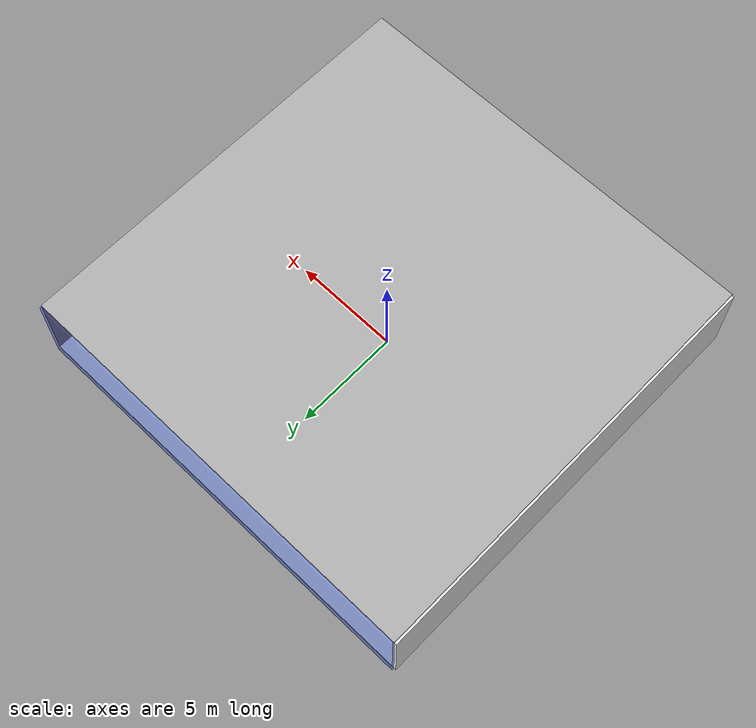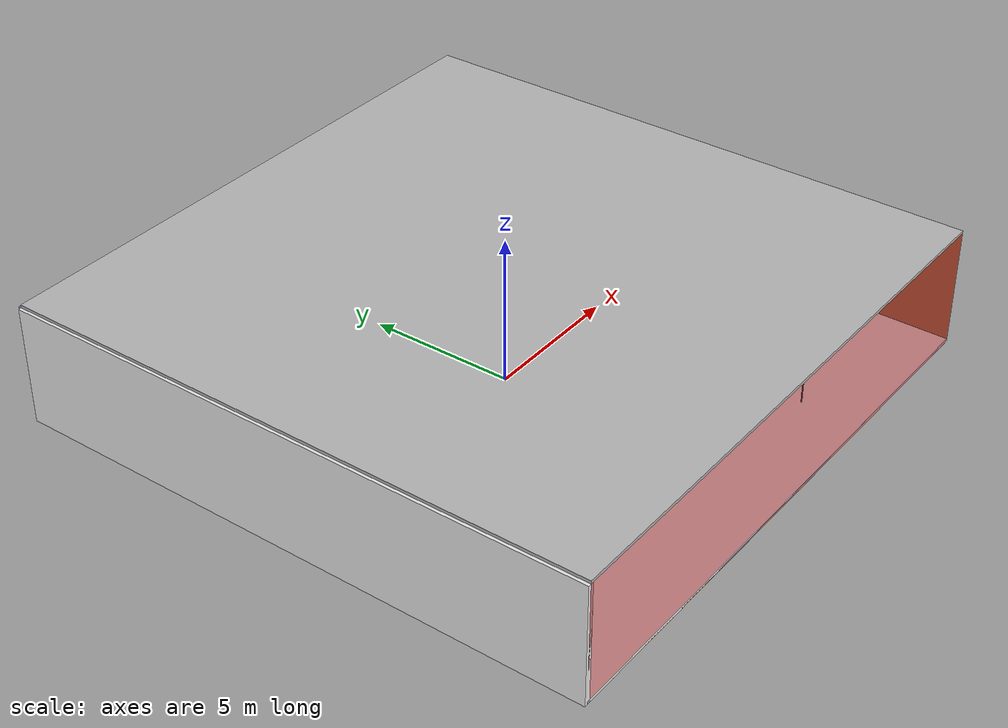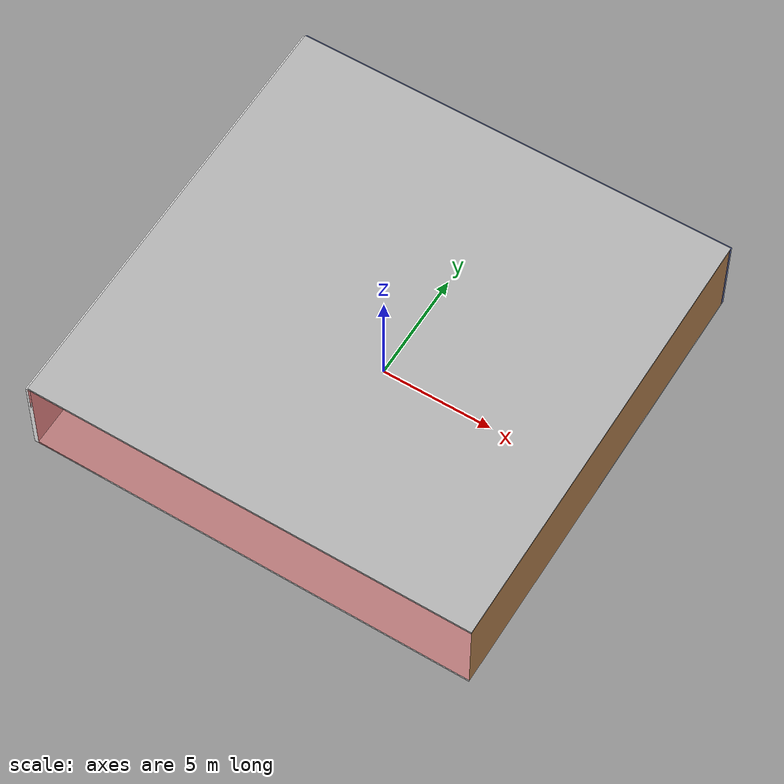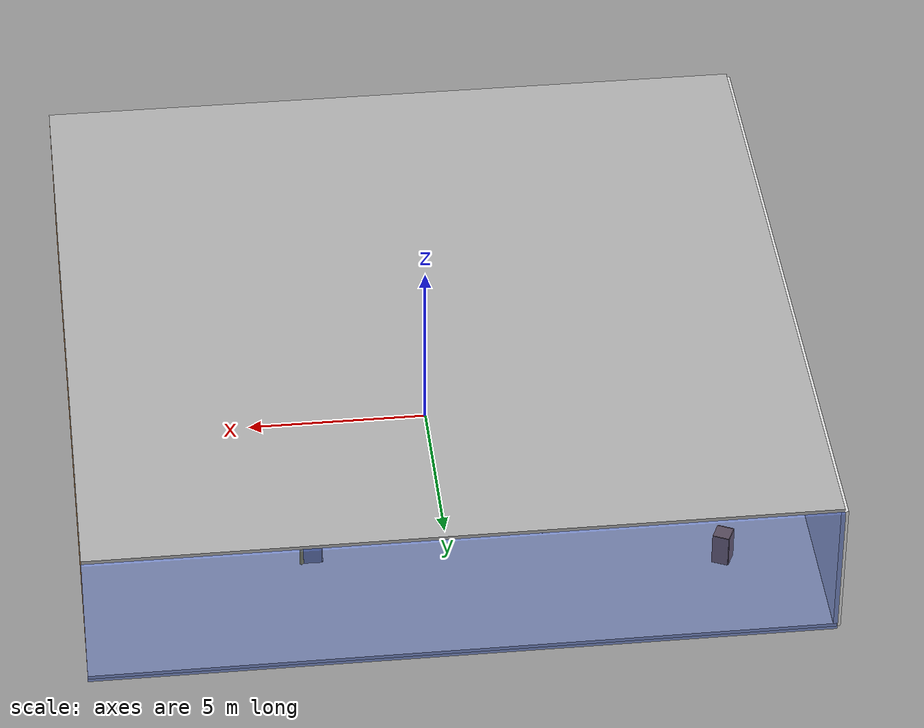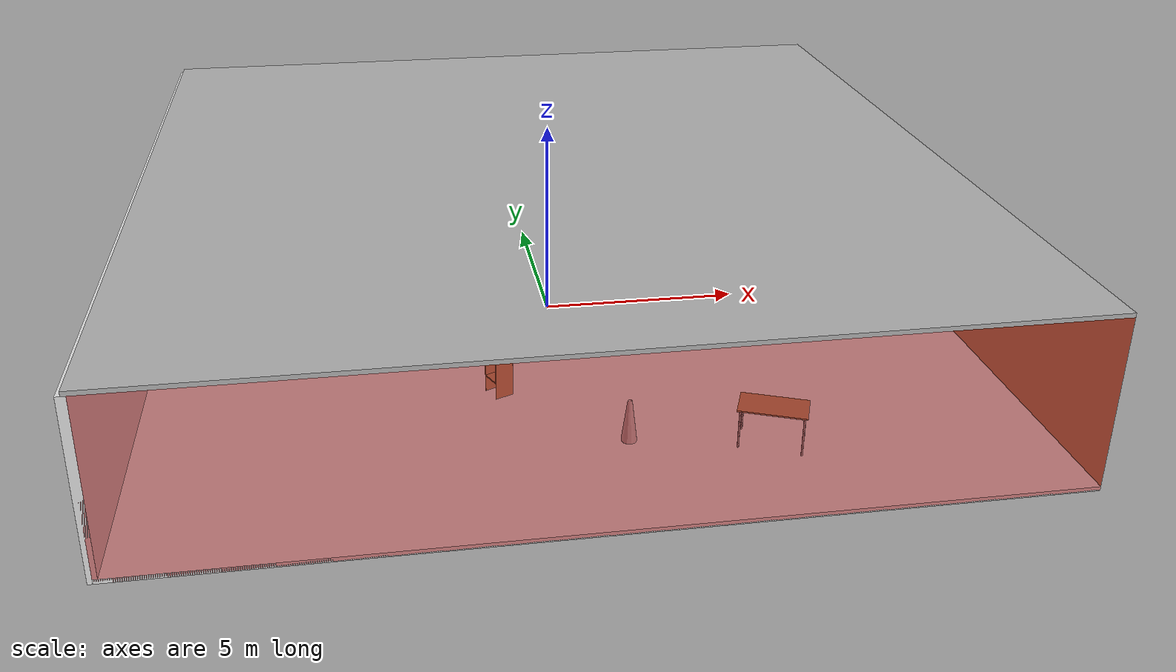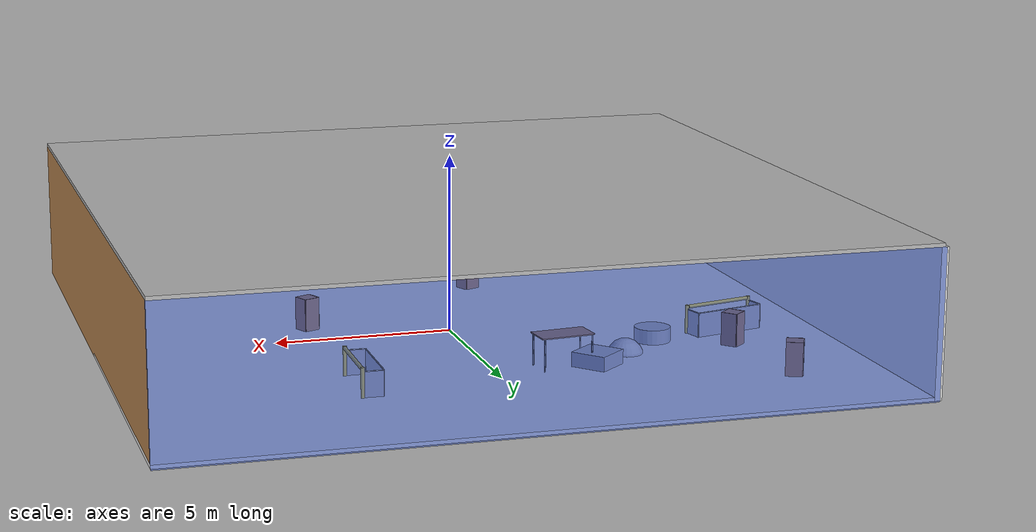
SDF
<sdf version="1.4">
 <world name="default">
  <physics type="ode">
   <max_step_size>0.001</max_step_size>
   <real_time_factor>1</real_time_factor>
   <real_time_update_rate>1000</real_time_update_rate>
   <gravity>0 0 -9.8</gravity>
  </physics>
  <scene><ambient>0.4 0.4 0.4 1</ambient><background>0.7 0.7 0.7 1</background><shadows>1</shadows></scene>
  <model name="Surrounding">
   <static>1</static>
   <link name="Ceiling">
    <collision name="Ceiling_Collision"><geometry><box><size>20 20 0.1</size></box></geometry></collision>
    <visual name="Ceiling_Visual">
     <geometry><box><size>20 20 0.1</size></box></geometry>
     <material>
      <script><uri>file://media/materials/scripts/gazebo.material</uri><name>Gazebo/Pioneer2Body</name></script>
     </material>
    </visual>
    <pose>0 0 4.05 0 0 0</pose>
   </link>
   <link name="Wall_South">
    <collision name="Wall_South_Collision">
     <geometry><box><size>20 0 4</size></box></geometry>
     <pose>0 0 2 0 -0 0</pose>
    </collision>
    <visual name="Wall_South_Visual">
     <pose>0 0 2 0 -0 0</pose>
     <geometry><box><size>20 0 4</size></box></geometry>
     <material>
      <script><uri>file://media/materials/scripts/gazebo.material</uri><name>Gazebo/RedTransparent</name></script>
     </material>
    </visual>
    <velocity_decay><linear>0</linear><angular>0</angular></velocity_decay>
    <pose>0 -10 0 0 -0 0</pose>
   </link>
   <link name="Wall_East">
    <collision name="Wall_21_Collision">
     <geometry><box><size>20 0 4</size></box></geometry>
     <pose>0 0 2 0 -0 0</pose>
    </collision>
    <visual name="Wall_21_Visual">
     <pose>0 0 2 0 -0 0</pose>
     <geometry><box><size>20 0 4</size></box></geometry>
     <material>
      <script><uri>file://media/materials/scripts/gazebo.material</uri><name>Gazebo/WoodPallet</name></script>
     </material>
    </visual>
    <velocity_decay><linear>0</linear><angular>0</angular></velocity_decay>
    <pose>10 0 0 0 -0 1.5708</pose>
   </link>
   <link name="Wall_North">
    <collision name="Wall_22_Collision">
     <geometry><box><size>20 0.2 4</size></box></geometry>
     <pose>0 0 2 0 -0 0</pose>
    </collision>
    <visual name="Wall_22_Visual">
     <pose>0 0 2 0 -0 0</pose>
     <geometry><box><size>20 0.2 4</size></box></geometry>
     <material>
      <script><uri>file://media/materials/scripts/gazebo.material</uri><name>Gazebo/BlueTransparent</name></script>
     </material>
    </visual>
    <velocity_decay><linear>0</linear><angular>0</angular></velocity_decay>
    <pose>0 10 0 0 -0 0</pose>
   </link>
   <link name="Wall_West">
    <collision name="Wall_23_Collision">
     <geometry><box><size>20 0.2 4</size></box></geometry>
     <pose>0 0 2 0 -0 0</pose>
    </collision>
    <visual name="Wall_23_Visual">
     <pose>0 0 2 0 -0 0</pose>
     <geometry><box><size>20 0.2 4</size></box></geometry>
     <material>
      <script><uri>file://media/materials/scripts/gazebo.material</uri><name>Gazebo/White</name></script>
     </material>
    </visual>
    <velocity_decay><linear>0</linear><angular>0</angular></velocity_decay>
    <pose>-10 0 0 0 0 -1.5708</pose>
   </link>
   <link name="Ground_link">
    <collision name="collision">
     <pose>0 0 .05 0 -0 0</pose>
     <geometry><box><size>20 20 0.1</size></box></geometry>
    </collision>
    <visual name="visual">
     <pose>0 0 .05 0 -0 0</pose>
     <geometry><box><size>20 20 0.1</size></box></geometry>
     <material>
      <script><uri>file://media/materials/scripts/gazebo.material</uri><name>Gazebo/White</name></script>
     </material>
    </visual>
   </link>
   <static>1</static>
  </model>
  <spherical_coordinates>
   <surface_model>EARTH_WGS84</surface_model>
   <latitude_deg>0</latitude_deg>
   <longitude_deg>0</longitude_deg>
   <elevation>0</elevation>
   <heading_deg>0</heading_deg>
  </spherical_coordinates>
  <light name="lightball_0" type="diffuse">
   <diffuse>0.8 0.8 0.8 1</diffuse>
   <specular>0.2 0.2 0.2 1</specular>
   <attenuation>
    <range>100</range>
    <constant>0.7</constant>
    <linear>0.01</linear>
    <quadratic>0.001</quadratic>
   </attenuation>
   <direction>-0.5 0.1 -0.9</direction>
   <pose>-8.60691867479 7.83283280901 0.898996388123 0 0 0</pose>
  </light>
  <light name="lightball_1" type="diffuse">
   <diffuse>0.8 0.8 0.8 1</diffuse>
   <specular>0.2 0.2 0.2 1</specular>
   <attenuation>
    <range>100</range>
    <constant>0.7</constant>
    <linear>0.01</linear>
    <quadratic>0.001</quadratic>
   </attenuation>
   <direction>-0.5 0.1 -0.9</direction>
   <pose>-0.950400356229 -5.28985064254 0.677407773528 0 0 0</pose>
  </light>
  <light name="lightball_2" type="diffuse">
   <diffuse>0.8 0.8 0.8 1</diffuse>
   <specular>0.2 0.2 0.2 1</specular>
   <attenuation>
    <range>100</range>
    <constant>0.7</constant>
    <linear>0.01</linear>
    <quadratic>0.001</quadratic>
   </attenuation>
   <direction>-0.5 0.1 -0.9</direction>
   <pose>-3.54640664523 3.58328706735 0.931507076878 0 0 0</pose>
  </light>
  <light name="lightball_3" type="diffuse">
   <diffuse>0.8 0.8 0.8 1</diffuse>
   <specular>0.2 0.2 0.2 1</specular>
   <attenuation>
    <range>100</range>
    <constant>0.7</constant>
    <linear>0.01</linear>
    <quadratic>0.001</quadratic>
   </attenuation>
   <direction>-0.5 0.1 -0.9</direction>
   <pose>-2.82563621037 -7.7373148243 1.85262748357 0 0 0</pose>
  </light>
  <light name="lightball_4" type="diffuse">
   <diffuse>0.8 0.8 0.8 1</diffuse>
   <specular>0.2 0.2 0.2 1</specular>
   <attenuation>
    <range>100</range>
    <constant>0.7</constant>
    <linear>0.01</linear>
    <quadratic>0.001</quadratic>
   </attenuation>
   <direction>-0.5 0.1 -0.9</direction>
   <pose>-4.30036184624 6.45061322598 3.57554587773 0 0 0</pose>
  </light>
  <light name="lightball_5" type="diffuse">
   <diffuse>0.8 0.8 0.8 1</diffuse>
   <specular>0.2 0.2 0.2 1</specular>
   <attenuation>
    <range>100</range>
    <constant>0.7</constant>
    <linear>0.01</linear>
    <quadratic>0.001</quadratic>
   </attenuation>
   <direction>-0.5 0.1 -0.9</direction>
   <pose>0.389448733231 9.15260801094 1.01913031908 0 0 0</pose>
  </light>
  <light name="lightball_6" type="diffuse">
   <diffuse>0.8 0.8 0.8 1</diffuse>
   <specular>0.2 0.2 0.2 1</specular>
   <attenuation>
    <range>100</range>
    <constant>0.7</constant>
    <linear>0.01</linear>
    <quadratic>0.001</quadratic>
   </attenuation>
   <direction>-0.5 0.1 -0.9</direction>
   <pose>-7.94840819024 -6.57184495311 1.4324230199 0 0 0</pose>
  </light>
  <light name="lightball_7" type="diffuse">
   <diffuse>0.8 0.8 0.8 1</diffuse>
   <specular>0.2 0.2 0.2 1</specular>
   <attenuation>
    <range>100</range>
    <constant>0.7</constant>
    <linear>0.01</linear>
    <quadratic>0.001</quadratic>
   </attenuation>
   <direction>-0.5 0.1 -0.9</direction>
   <pose>-6.05155233157 -4.60892630104 3.52467104785 0 0 0</pose>
  </light>
  <light name="lightball_8" type="diffuse">
   <diffuse>0.8 0.8 0.8 1</diffuse>
   <specular>0.2 0.2 0.2 1</specular>
   <attenuation>
    <range>100</range>
    <constant>0.7</constant>
    <linear>0.01</linear>
    <quadratic>0.001</quadratic>
   </attenuation>
   <direction>-0.5 0.1 -0.9</direction>
   <pose>-6.15092709124 1.3713482248 0.805169252391 0 0 0</pose>
  </light>
  <light name="lightball_9" type="diffuse">
   <diffuse>0.8 0.8 0.8 1</diffuse>
   <specular>0.2 0.2 0.2 1</specular>
   <attenuation>
    <range>100</range>
    <constant>0.7</constant>
    <linear>0.01</linear>
    <quadratic>0.001</quadratic>
   </attenuation>
   <direction>-0.5 0.1 -0.9</direction>
   <pose>-0.949572715135 2.60936624626 1.06960277063 0 0 0</pose>
  </light>
  <light name="lightball_10" type="diffuse">
   <diffuse>0.8 0.8 0.8 1</diffuse>
   <specular>0.2 0.2 0.2 1</specular>
   <attenuation>
    <range>100</range>
    <constant>0.7</constant>
    <linear>0.01</linear>
    <quadratic>0.001</quadratic>
   </attenuation>
   <direction>-0.5 0.1 -0.9</direction>
   <pose>9.71940484223 8.87673655682 0.578536398182 0 0 0</pose>
  </light>
  <light name="lightball_11" type="diffuse">
   <diffuse>0.8 0.8 0.8 1</diffuse>
   <specular>0.2 0.2 0.2 1</specular>
   <attenuation>
    <range>100</range>
    <constant>0.7</constant>
    <linear>0.01</linear>
    <quadratic>0.001</quadratic>
   </attenuation>
   <direction>-0.5 0.1 -0.9</direction>
   <pose>4.37105195811 6.72947809083 3.80740912869 0 0 0</pose>
  </light>
  <light name="lightball_12" type="diffuse">
   <diffuse>0.8 0.8 0.8 1</diffuse>
   <specular>0.2 0.2 0.2 1</specular>
   <attenuation>
    <range>100</range>
    <constant>0.7</constant>
    <linear>0.01</linear>
    <quadratic>0.001</quadratic>
   </attenuation>
   <direction>-0.5 0.1 -0.9</direction>
   <pose>-5.69597201695 -2.58424030136 2.0404333514 0 0 0</pose>
  </light>
  <light name="lightball_13" type="diffuse">
   <diffuse>0.8 0.8 0.8 1</diffuse>
   <specular>0.2 0.2 0.2 1</specular>
   <attenuation>
    <range>100</range>
    <constant>0.7</constant>
    <linear>0.01</linear>
    <quadratic>0.001</quadratic>
   </attenuation>
   <direction>-0.5 0.1 -0.9</direction>
   <pose>-4.80835099288 -1.26355275587 1.02082896921 0 0 0</pose>
  </light>
  <include>
   <uri>model://robocup_3Dsim_goal</uri>
   <pose>-7.20632637438 2.12937335797 0 0 0 1.81216201949</pose>
  </include>
  <include><uri>model://cabinet</uri><pose>-6.95671813242 3.82563177249 0 0 0 2.27592674234</pose></include>
  <include><uri>model://cabinet</uri><pose>-7.35846967873 7.04579985242 0 0 0 2.69809813254</pose></include>
  <include>
   <uri>model://textured_shapes</uri>
   <pose>-3.83609170537 3.84230042149 0 0 0 2.27675740001</pose>
  </include>
  <include><uri>model://cabinet</uri><pose>-1.7929261672 -4.39669946794 0 0 0 0.422588786741</pose></include>
  <include><uri>model://table</uri><pose>-1.77645860415 4.66784513993 0 0 0 0.104676978747</pose></include>
  <include>
   <uri>model://construction_cone</uri>
   <pose>0.769460175162 -6.83423867819 0 0 0 0.646859004538</pose>
  </include>
  <include><uri>model://table</uri><pose>3.81275745335 -7.36962426894 0 0 0 2.75181425397</pose></include>
  <include><uri>model://cabinet</uri><pose>3.89218385464 -0.935508128779 0 0 0 1.98123756652</pose></include>
  <include>
   <uri>model://robocup_3Dsim_goal</uri>
   <pose>3.99414320921 5.02099536274 0 0 0 3.12571986672</pose>
  </include>
 </world>
</sdf>

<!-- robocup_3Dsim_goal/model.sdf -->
<sdf version="1.5">
  <model name="robocup_3d_goal">
    <static>true</static>
    <link name="left_post">
      <pose>0 1.05 0.45 0 0 0</pose>
      <collision name="collision">
        <geometry>
          <cylinder>
            <radius>0.05</radius>
            <length>0.9</length>
          </cylinder>
        </geometry>
      </collision>
      <visual name="visual">
        <geometry>
          <cylinder>
            <radius>0.05</radius>
            <length>0.9</length>
          </cylinder>
        </geometry>
        <material>
          <script>
            <uri>file://media/materials/scripts/gazebo.material</uri>
            <name>Gazebo/ZincYellow</name>
          </script>
        </material>
      </visual>
    </link>
    <link name="left_support_horiz_lower">
      <pose>0.30 1.05 0.01 0 0 0</pose>
      <collision name="collision">
        <geometry>
          <box>
            <size>0.50 0.02 0.02</size>
          </box>
        </geometry>
      </collision>
      <visual name="visual">
        <geometry>
          <box>
            <size>0.50 0.02 0.02</size>
          </box>
        </geometry>
        <material>
          <script>
            <uri>file://media/materials/scripts/gazebo.material</uri>
            <name>Gazebo/White</name>
          </script>
        </material>
      </visual>
    </link>
    <link name="left_support_horiz_upper">
      <pose>0.30 1.05 0.79 0 0 0</pose>
      <collision name="collision">
        <geometry>
          <box>
            <size>0.50 0.02 0.02</size>
          </box>
        </geometry>
      </collision>
      <visual name="visual">
        <geometry>
          <box>
            <size>0.50 0.02 0.02</size>
          </box>
        </geometry>
        <material>
          <script>
            <uri>file://media/materials/scripts/gazebo.material</uri>
            <name>Gazebo/White</name>
          </script>
        </material>
      </visual>
    </link>
    <link name="left_support_vertical">
      <pose>0.56 1.05 0.4 0 1.5708 0</pose>
      <collision name="collision">
        <geometry>
          <box>
            <size>0.80 0.02 0.02</size>
          </box>
        </geometry>
      </collision>
      <visual name="visual">
        <geometry>
          <box>
            <size>0.80 0.02 0.02</size>
          </box>
        </geometry>
        <material>
          <script>
            <uri>file://media/materials/scripts/gazebo.material</uri>
            <name>Gazebo/White</name>
          </script>
        </material>
      </visual>
    </link>
    <link name="right_support_horiz_lower">
      <pose>0.30 -1.05 0.01 0 0 0</pose>
      <collision name="collision">
        <geometry>
          <box>
            <size>0.50 0.02 0.02</size>
          </box>
        </geometry>
      </collision>
      <visual name="visual">
        <geometry>
          <box>
            <size>0.50 0.02 0.02</size>
          </box>
        </geometry>
        <material>
          <script>
            <uri>file://media/materials/scripts/gazebo.material</uri>
            <name>Gazebo/White</name>
          </script>
        </material>
      </visual>
    </link>
    <link name="right_support_horiz_upper">
      <pose>0.30 -1.05 0.79 0 0 0</pose>
      <collision name="collision">
        <geometry>
          <box>
            <size>0.50 0.02 0.02</size>
          </box>
        </geometry>
      </collision>
      <visual name="visual">
        <geometry>
          <box>
            <size>0.50 0.02 0.02</size>
          </box>
        </geometry>
        <material>
          <script>
            <uri>file://media/materials/scripts/gazebo.material</uri>
            <name>Gazebo/White</name>
          </script>
        </material>
      </visual>
    </link>
    <link name="right_support_vertical">
      <pose>0.56 -1.05 0.4 0 1.5708 0</pose>
      <collision name="collision">
        <geometry>
          <box>
            <size>0.80 0.02 0.02</size>
          </box>
        </geometry>
      </collision>
      <visual name="visual">
        <geometry>
          <box>
            <size>0.80 0.02 0.02</size>
          </box>
        </geometry>
        <material>
          <script>
            <uri>file://media/materials/scripts/gazebo.material</uri>
            <name>Gazebo/White</name>
          </script>
        </material>
      </visual>
    </link>
    <link name="center_support_horiz_lower">
      <pose>0.56 0 0.01 0 1.5708 0</pose>
      <collision name="collision">
        <geometry>
          <box>
            <size>0.02 2.08 0.02</size>
          </box>
        </geometry>
      </collision>
      <visual name="visual">
        <geometry>
          <box>
            <size>0.02 2.08 0.02</size>
          </box>
        </geometry>
        <material>
          <script>
            <uri>file://media/materials/scripts/gazebo.material</uri>
            <name>Gazebo/White</name>
          </script>
        </material>
      </visual>
    </link>
    <link name="center_support_horiz_upper">
      <pose>0.56 0 0.79 0 1.5708 0</pose>
      <collision name="collision">
        <geometry>
          <box>
            <size>0.02 2.08 0.02</size>
          </box>
        </geometry>
      </collision>
      <visual name="visual">
        <geometry>
          <box>
            <size>0.02 2.08 0.02</size>
          </box>
        </geometry>
        <material>
          <script>
            <uri>file://media/materials/scripts/gazebo.material</uri>
            <name>Gazebo/White</name>
          </script>
        </material>
      </visual>
    </link>
    <link name="right_post">
      <pose>0 -1.05 0.45 0 0 0</pose>
      <collision name="collision">
        <geometry>
          <cylinder>
            <radius>0.05</radius>
            <length>0.9</length>
          </cylinder>
        </geometry>
      </collision>
      <visual name="visual">
        <geometry>
          <cylinder>
            <radius>0.05</radius>
            <length>0.9</length>
          </cylinder>
        </geometry>
        <material>
          <script>
            <uri>file://media/materials/scripts/gazebo.material</uri>
            <name>Gazebo/ZincYellow</name>
          </script>
        </material>
      </visual>
    </link>
    <link name="crossbar">
      <pose>0 0 0.85 1.57 1.57 0</pose>
      <collision name="collision">
        <geometry>
          <cylinder>
            <radius>0.05</radius>
            <length>2.0</length>
          </cylinder>
        </geometry>
      </collision>
      <visual name="visual">
        <geometry>
          <cylinder>
            <radius>0.05</radius>
            <length>2.0</length>
          </cylinder>
        </geometry>
        <material>
          <script>
            <uri>file://media/materials/scripts/gazebo.material</uri>
            <name>Gazebo/ZincYellow</name>
          </script>
        </material>
      </visual>
    </link>
    <link name="center_net">
      <pose>0.56 0 0.40 0 0 0</pose>
      <collision name="collision">
        <geometry>
          <box>
            <size>0.01 2.1 0.80</size>
          </box>
        </geometry>
      </collision>
      <visual name="visual">
        <geometry>
          <box>
            <size>0.01 2.1 0.80</size>
          </box>
        </geometry>
        <material>
          <script>
            <uri>model://../model_source/models/robocup09_spl_field/materials/scripts/</uri>
            <uri>model://../model_source/models/robocup09_spl_field/materials/textures/</uri>
            <name>RoboCup/Net</name>
          </script>
        </material>
      </visual>
    </link>
    <link name="left_net">
      <pose>0.30 1.05 0.40 0 0 0</pose>
      <collision name="collision">
        <geometry>
          <box>
            <size>0.50 0.01 0.76</size>
          </box>
        </geometry>
      </collision>
      <visual name="visual">
        <geometry>
          <box>
            <size>0.50 0.01 0.76</size>
          </box>
        </geometry>
        <material>
          <script>
            <uri>model://../model_source/models/robocup09_spl_field/materials/scripts/</uri>
            <uri>model://../model_source/models/robocup09_spl_field/materials/textures/</uri>
            <name>RoboCup/Net</name>
          </script>
        </material>
      </visual>
    </link>
    <link name="right_net">
      <pose>0.30 -1.05 0.40 0 0 0</pose>
      <collision name="collision">
        <geometry>
          <box>
            <size>0.50 0.01 0.76</size>
          </box>
        </geometry>
      </collision>
      <visual name="visual">
        <geometry>
          <box>
            <size>0.50 0.01 0.76</size>
          </box>
        </geometry>
        <material>
          <script>
            <uri>model://../model_source/models/robocup09_spl_field/materials/scripts/</uri>
            <uri>model://../model_source/models/robocup09_spl_field/materials/textures/</uri>
            <name>RoboCup/Net</name>
          </script>
        </material>
      </visual>
    </link>
  </model>
</sdf>

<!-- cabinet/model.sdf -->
<sdf version="1.5">
  <model name="cabinet">
    <static>true</static>
    <link name="cabinet_bottom_plate">
      <inertial>
        <pose>0 0 -1 0 0 0</pose>
        <inertia>
          <ixx>2.050000</ixx>
          <ixy>0</ixy>
          <ixz>0</ixz>
          <iyy>2.050000</iyy>
          <iyz>0</iyz>
          <izz>2.050000</izz>
        </inertia>
        <mass>25.000000</mass>
      </inertial>
      <collision name="cabinet_bottom_plate_geom">
        <pose>0 0 0.010000 0 0 0</pose>
        <geometry>
          <box>
            <size>0.450000 0.450000 0.020000</size>
          </box>
        </geometry>
      </collision>
      <visual name="cabinet_bottom_plate_geom_visual">
        <pose>0 0 0.010000 0 0 0</pose>
        <geometry>
          <box>
            <size>0.450000 0.450000 0.020000</size>
          </box>
        </geometry>
        <material>
          <script>
            <uri>model://media/materials/scripts/gazebo.material</uri>
            <name>Gazebo/Wood</name>
          </script>
        </material>
      </visual>
      <collision name="cabinet_bottom_plate_geom_cabinet_back_plate">
        <pose>0.235000 0 0.510000 0 0 0</pose>
        <geometry>
          <box>
            <size>0.020000 0.450000 1.020000</size>
          </box>
        </geometry>
      </collision>
      <visual name="cabinet_bottom_plate_geom_cabinet_back_plate_visual">
        <pose>0.235000 0 0.510000 0 0 0</pose>
        <geometry>
          <box>
            <size>0.020000 0.450000 1.020000</size>
          </box>
        </geometry>
        <material>
          <script>
            <uri>model://media/materials/scripts/gazebo.material</uri>
            <name>Gazebo/Wood</name>
          </script>
        </material>
      </visual>
      <collision name="cabinet_bottom_plate_geom_cabinet_left_plate">
        <pose>0 0.235000 0.510000 0 0 0</pose>
        <geometry>
          <box>
            <size>0.450000 0.020000 1.020000</size>
          </box>
        </geometry>
      </collision>
      <visual name="cabinet_bottom_plate_geom_cabinet_left_plate_visual">
        <pose>0 0.235000 0.510000 0 0 0</pose>
        <geometry>
          <box>
            <size>0.450000 0.020000 1.020000</size>
          </box>
        </geometry>
        <material>
          <script>
            <uri>model://media/materials/scripts/gazebo.material</uri>
            <name>Gazebo/Wood</name>
          </script>
        </material>
      </visual>
      <collision name="cabinet_bottom_plate_geom_cabinet_middle_plate">
        <pose>0 0 0.510000 0 0 0</pose>
        <geometry>
          <box>
            <size>0.450000 0.450000 0.020000</size>
          </box>
        </geometry>
      </collision>
      <visual name="cabinet_bottom_plate_geom_cabinet_middle_plate_visual">
        <pose>0 0 0.510000 0 0 0</pose>
        <geometry>
          <box>
            <size>0.450000 0.450000 0.020000</size>
          </box>
        </geometry>
        <material>
          <script>
            <uri>model://media/materials/scripts/gazebo.material</uri>
            <name>Gazebo/Wood</name>
          </script>
        </material>
      </visual>
      <collision name="cabinet_bottom_plate_geom_cabinet_right_plate">
        <pose>0 -0.235000 0.510000 0 0 0</pose>
        <geometry>
          <box>
            <size>0.450000 0.020000 1.020000</size>
          </box>
        </geometry>
      </collision>
      <visual name="cabinet_bottom_plate_geom_cabinet_right_plate_visual">
        <pose>0 -0.235000 0.510000 0 0 0</pose>
        <geometry>
          <box>
            <size>0.450000 0.020000 1.020000</size>
          </box>
        </geometry>
        <material>
          <script>
            <uri>model://media/materials/scripts/gazebo.material</uri>
            <name>Gazebo/Wood</name>
          </script>
        </material>
      </visual>
      <collision name="cabinet_bottom_plate_geom_cabinet_top_plate">
        <pose>0 0 1.010000 0 0 0</pose>
        <geometry>
          <box>
            <size>0.450000 0.450000 0.020000</size>
          </box>
        </geometry>
      </collision>
      <visual name="cabinet_bottom_plate_geom_cabinet_top_plate_visual">
        <pose>0 0 1.010000 0 0 0</pose>
        <geometry>
          <box>
            <size>0.450000 0.450000 0.020000</size>
          </box>
        </geometry>
        <material>
          <script>
            <uri>model://media/materials/scripts/gazebo.material</uri>
            <name>Gazebo/Wood</name>
          </script>
        </material>
      </visual>
    </link>
  </model>
</sdf>

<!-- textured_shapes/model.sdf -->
<sdf version="1.6">
  <model name="textured_shapes">
    <pose>0 0 0.5 0 0 0</pose>
    <link name="box">
      <pose>0 -1.5 0 0 0 0</pose>
      <collision name="collision">
        <geometry>
          <box>
            <size>1 1 1</size>
          </box>
        </geometry>
      </collision>
      <visual name="visual">
        <geometry>
          <box>
            <size>1 1 1</size>
          </box>
        </geometry>
        <material>
          <script>
            <uri>model://../model_source/models/textured_shapes/materials/scripts</uri>
            <uri>model://../model_source/models/textured_shapes/materials/textures</uri>
            <name>TexturedShape/Squares</name>
          </script>
        </material>
      </visual>
    </link>
    <link name="sphere">
      <collision name="collision">
        <geometry>
          <sphere>
            <radius>0.5</radius>
          </sphere>
        </geometry>
      </collision>
      <visual name="visual">
        <geometry>
          <sphere>
            <radius>0.5</radius>
          </sphere>
        </geometry>
        <material>
          <script>
            <uri>model://../model_source/models/textured_shapes/materials/scripts</uri>
            <uri>model://../model_source/models/textured_shapes/materials/textures</uri>
            <name>TexturedShape/Squares</name>
          </script>
        </material>
      </visual>
    </link>
    <link name="cylinder">
      <pose>0 1.5 0 0 0 0</pose>
      <collision name="collision">
        <geometry>
          <cylinder>
            <radius>0.5</radius>
            <length>1</length>
          </cylinder>
        </geometry>
      </collision>
      <visual name="visual">
        <geometry>
          <cylinder>
            <radius>0.5</radius>
            <length>1</length>
          </cylinder>
        </geometry>
        <material>
          <script>
            <uri>model://../model_source/models/textured_shapes/materials/scripts</uri>
            <uri>model://../model_source/models/textured_shapes/materials/textures</uri>
            <name>TexturedShape/Squares</name>
          </script>
        </material>
      </visual>
    </link>
  </model>
</sdf>

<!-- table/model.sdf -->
<sdf version="1.5">
  <model name="table">
    <static>true</static>
    <link name="link">
      <collision name="surface">
        <pose>0 0 1.0 0 0 0</pose>
        <geometry>
          <box>
            <size>1.5 0.8 0.03</size>
          </box>
        </geometry>
        <surface>
          <friction>
            <ode>
              <mu>0.6</mu>
              <mu2>0.6</mu2>
            </ode>
          </friction>
        </surface>
      </collision>
      <visual name="visual1">
        <pose>0 0 1.0 0 0 0</pose>
        <geometry>
          <box>
            <size>1.5 0.8 0.03</size>
          </box>
        </geometry>
        <material>
          <script>
            <uri>model://media/materials/scripts/gazebo.material</uri>
            <name>Gazebo/Wood</name>
          </script>
        </material>
      </visual>
      <collision name="front_left_leg">
        <pose>0.68 0.38 0.5 0 0 0</pose>
        <geometry>
          <cylinder>
            <radius>0.02</radius>
            <length>1.0</length>
          </cylinder>
        </geometry>
      </collision>
      <visual name="front_left_leg">
        <pose>0.68 0.38 0.5 0 0 0</pose>
        <geometry>
          <cylinder>
            <radius>0.02</radius>
            <length>1.0</length>
          </cylinder>
        </geometry>
        <material>
          <script>
            <uri>model://media/materials/scripts/gazebo.material</uri>
            <name>Gazebo/Grey</name>
          </script>
        </material>
      </visual>
      <collision name="front_right_leg">
        <pose>0.68 -0.38 0.5 0 0 0</pose>
        <geometry>
          <cylinder>
            <radius>0.02</radius>
            <length>1.0</length>
          </cylinder>
        </geometry>
      </collision>
      <visual name="front_right_leg">
        <pose>0.68 -0.38 0.5 0 0 0</pose>
        <geometry>
          <cylinder>
            <radius>0.02</radius>
            <length>1.0</length>
          </cylinder>
        </geometry>
        <material>
          <script>
            <uri>model://media/materials/scripts/gazebo.material</uri>
            <name>Gazebo/Grey</name>
          </script>
        </material>
      </visual>
      <collision name="back_right_leg">
        <pose>-0.68 -0.38 0.5 0 0 0</pose>
        <geometry>
          <cylinder>
            <radius>0.02</radius>
            <length>1.0</length>
          </cylinder>
        </geometry>
      </collision>
      <visual name="back_right_leg">
        <pose>-0.68 -0.38 0.5 0 0 0</pose>
        <geometry>
          <cylinder>
            <radius>0.02</radius>
            <length>1.0</length>
          </cylinder>
        </geometry>
        <material>
          <script>
            <uri>model://media/materials/scripts/gazebo.material</uri>
            <name>Gazebo/Grey</name>
          </script>
        </material>
      </visual>
      <collision name="back_left_leg">
        <pose>-0.68 0.38 0.5 0 0 0</pose>
        <geometry>
          <cylinder>
            <radius>0.02</radius>
            <length>1.0</length>
          </cylinder>
        </geometry>
      </collision>
      <visual name="back_left_leg">
        <pose>-0.68 0.38 0.5 0 0 0</pose>
        <geometry>
          <cylinder>
            <radius>0.02</radius>
            <length>1.0</length>
          </cylinder>
        </geometry>
        <material>
          <script>
            <uri>model://media/materials/scripts/gazebo.material</uri>
            <name>Gazebo/Grey</name>
          </script>
        </material>
      </visual>
    </link>
  </model>
</sdf>

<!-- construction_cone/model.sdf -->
<sdf version="1.5">
  <model name="Construction Cone">
    <link name="link">
      <collision name="collision">
        <geometry>
          <mesh>
            <scale>10 10 10</scale>
            <uri>file://isr-testbed/construction_cone/meshes/construction_cone.dae</uri>
          </mesh>
        </geometry>
      </collision>
      <visual name="visual">
        <geometry>
          <mesh>
            <scale>10 10 10</scale>
            <uri>file://isr-testbed/construction_cone/meshes/construction_cone.dae</uri>
          </mesh>
        </geometry>
      </visual>
    </link>
  </model>
</sdf>
